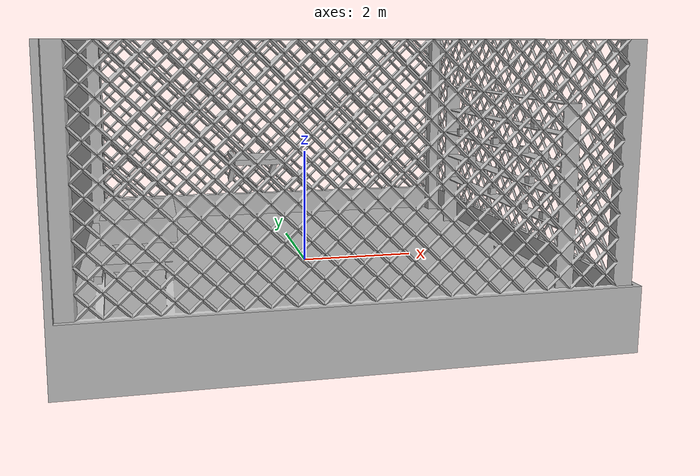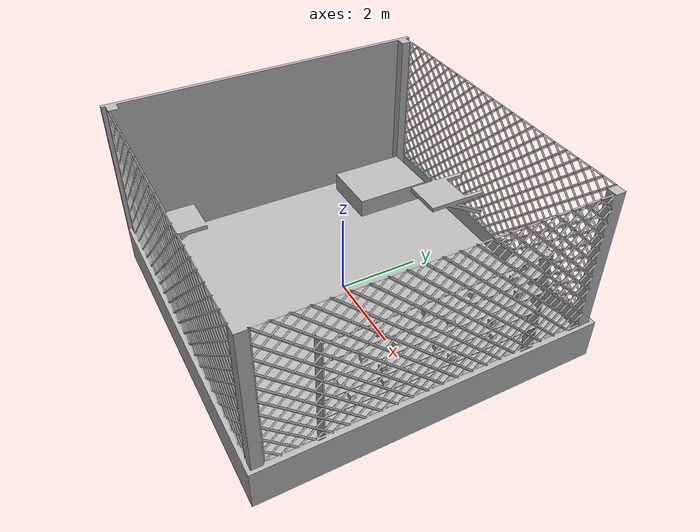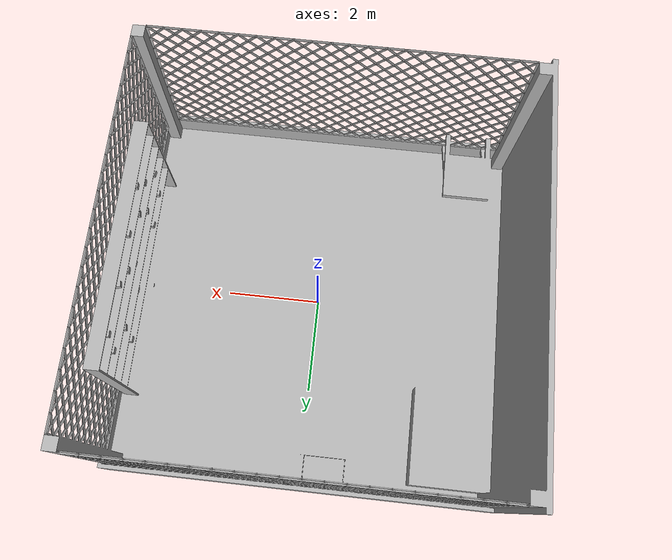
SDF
<?xml version="1.0"?>
<sdf version="1.6">
    <model name="arena">
        <static>true</static>
        <link name="link">
            <collision name="collision">
                <geometry>
                    <mesh>
                        <scale>1 1 1</scale>
                        <uri>//arena/meshes/arena.dae</uri>
                    </mesh>
                    <surface>
                        <friction>
                            <ode>
                                <mu>1.2</mu>
                                <mu2>1.2</mu2>
                            </ode>
                        </friction>
                    </surface>
                </geometry>
            </collision>
            <visual name="visual">
                <geometry>
                    <mesh>
                        <scale>1 1 1</scale>
                        <uri>model://arena/meshes/arena.dae</uri>
                    </mesh>
                </geometry>
            </visual>
        </link>
    </model>
</sdf>
